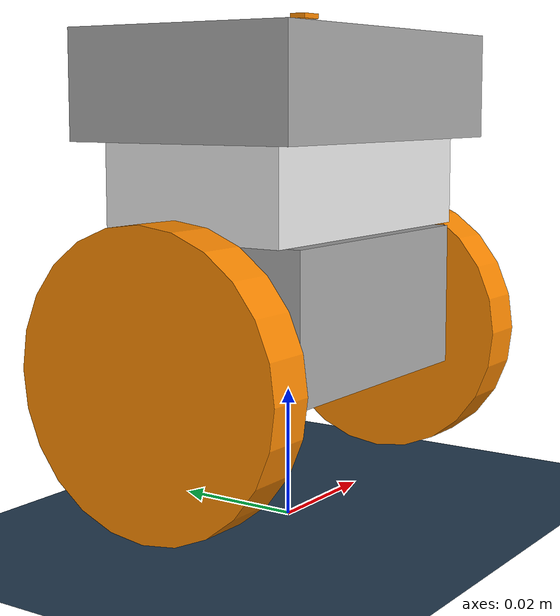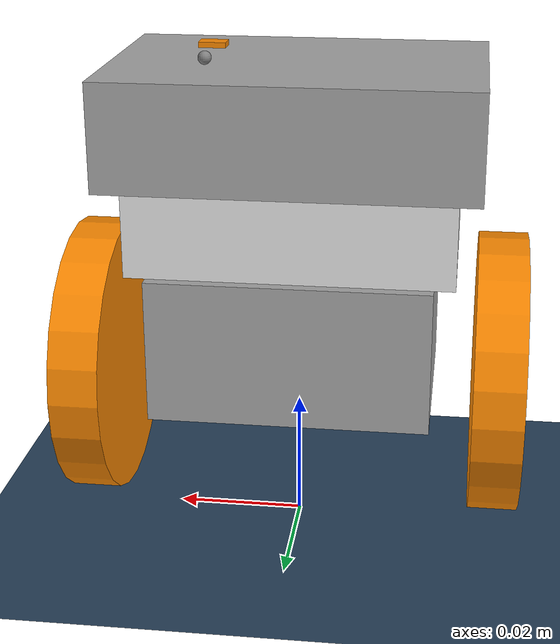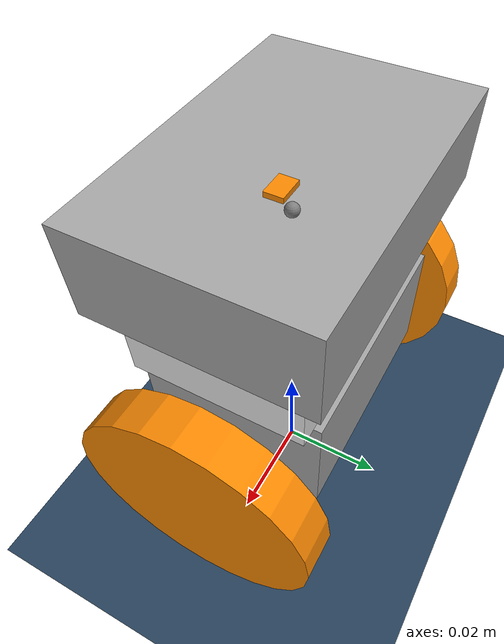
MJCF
<mujoco model="balance robot">
  <compiler angle="radian" meshdir="assembly_simplified/meshes/"/>

  <option timestep="0.005" integrator="implicitfast"/>

  <visual>
    <map znear="0.001" zfar="10"/>
    <scale contactwidth="0.1" contactheight="0.03"/>
  </visual>

  <default>
    <geom friction="0.8"/>
  </default>

  <asset>
    <texture type="2d" colorspace="auto" name="grid" builtin="checker" mark="edge" rgb1="0.1 0.2 0.3" rgb2="0.2 0.3 0.4" markrgb="0.2 0.3 0.4" width="300" height="300"/>
    <material name="grid" texture="grid" texuniform="true" texrepeat="2 2"/>
    <mesh name="motor_base" file="Motor_base.stl"/>
    <mesh name="lipos" file="Lipos.stl"/>
    <mesh name="electronics" file="Electronics.stl"/>
    <mesh name="sensor_imu" file="sensor_imu.stl"/>
    <mesh name="wheel" file="Wheel.stl"/>
    <mesh name="wheel_2" file="Wheel_2.stl"/>
  </asset>

  <worldbody>
    <geom name="ground" size="200 200 0.1" type="plane" material="grid"/>
    <light pos="0 0 100" dir="0 0 -1" ambient="0.4 0.4 0.4"/>
    <body name="root" pos="0 0 0.005">
      <joint name="_root" type="free"/>
      <site name="site_root" pos="0 0 0.0218" size="0.001"/>
      <body name="motor_base">
        <geom name="geom_motor_base" pos="0 0 0.0286586" quat="1 0 0 0" type="mesh" mass="0.0448498" rgba="0.647059 0.647059 0.647059 1" mesh="motor_base"/>
        <body name="lipos" pos="0 0 0.0401586">
          <geom name="geom_lipos" pos="0 0.00015 -0.0116" quat="1 0 0 0" type="mesh" mass="0.040025" rgba="0.901961 0.901961 0.901961 1" mesh="lipos"/>
          <body name="electronics" pos="0 0 0.01525">
            <geom name="geom_electronics" pos="0 0 -0.02685" quat="1 0 0 0" type="mesh" mass="0.032" rgba="0.647059 0.647059 0.647059 1" mesh="electronics"/>
            <body name="sensor_imu" pos="0.013 0.007 0.0162">
              <geom name="geom_sensor_imu" pos="-0.013 -0.007 -0.04305" type="mesh" mass="2.744e-09" rgba="0.972549 0.529412 0.00392157 1" mesh="sensor_imu"/>
              <site name="site_sensor_imu" pos="0 0 0" size="0.001"/>
            </body>
          </body>
        </body>
        <body name="wheel" pos="-0.02765 0 0.0218">
          <joint name="joint_wheel_left" pos="0 0 0" axis="-1 0 0"/>
          <geom name="geom_wheel" size="0.0218 0.0038" pos="-0.0038 0 0" quat="0.707107 0 0.707107 0" type="cylinder" mass="0.01" rgba="0.972549 0.529412 0.00392157 1"/>
        </body>
        <body name="wheel_2" pos="0.02765 0 0.0218">
          <joint name="joint_wheel_right" pos="0 0 0" axis="1 0 0"/>
          <geom name="geom_wheel_2" size="0.0218 0.0038" pos="0.0038 0 0" quat="0.707107 0 0.707107 0" type="cylinder" mass="0.01" rgba="0.972549 0.529412 0.00392157 1"/>
        </body>
      </body>
    </body>
  </worldbody>

  <actuator>
    <general name="act_wheel_left" joint="joint_wheel_left" ctrlrange="-8 8" forcelimited="true" forcerange="-0.0238048 0.0238048" actlimited="false" actearly="true" actdim="1" dyntype="dcmotor" dynprm="0.000213695 0 0 0 0 0 0 0 0 0" gaintype="dcmotor" biastype="dcmotor" gainprm="12.1669 0.158699"/>
    <general name="act_wheel_right" joint="joint_wheel_right" ctrlrange="-8 8" forcelimited="true" forcerange="-0.0238048 0.0238048" actlimited="false" actearly="true" actdim="1" dyntype="dcmotor" dynprm="0.000213695 0 0 0 0 0 0 0 0 0" gaintype="dcmotor" biastype="dcmotor" gainprm="12.1669 0.158699"/>
  </actuator>

  <sensor>
    <framequat objtype="site" objname="site_sensor_imu" name="imu_quat"/>
    <accelerometer site="site_sensor_imu" name="imu_accel"/>
    <gyro site="site_sensor_imu" name="imu_gyro"/>
    <jointvel joint="joint_wheel_left" name="jointvel_wheel_left"/>
    <jointvel joint="joint_wheel_right" name="jointvel_wheel_right"/>
    <velocimeter site="site_root" name="priv_vel"/>
  </sensor>
</mujoco>
